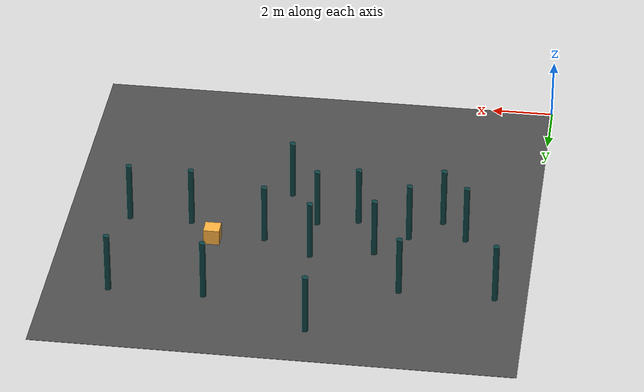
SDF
<sdf version="1.6">
 <world name="default">
  <model name="env_plane">
   <link name="link">
    <inertial>
     <mass>1</mass>
     <inertia><ixx>1</ixx><ixy>0</ixy><ixz>0</ixz><iyy>1</iyy><iyz>0</iyz><izz>1</izz></inertia>
    </inertial>
    <visual name="visual">
     <cast_shadows>0</cast_shadows>
     <geometry><box><size>15 15 0.01</size></box></geometry>
     <material>
      <script>
       <uri>model://asphalt_plane/materials/scripts</uri>
       <uri>model://asphalt_plane/materials/textures</uri>
       <name>vrc/asphalt</name>
      </script>
      <shader type="pixel"><normal_map>__default__</normal_map></shader>
      <diffuse>0.7 0.7 0.7 1</diffuse>
      <ambient>0.5 0.5 0.5 1</ambient>
      <specular>0.5 0.5 0.5 1</specular>
      <emissive>0.7 0.7 0.7 1</emissive>
     </material>
    </visual>
    <collision name="collision">
     <geometry><box><size>20 20 0.1</size></box></geometry>
     <surface>
      <friction>
       <ode><mu>1</mu><mu2>1</mu2><fdir1>0 0 0</fdir1><slip1>0</slip1><slip2>0</slip2></ode>
       <torsional>
        <coefficient>1</coefficient>
        <patch_radius>0</patch_radius>
        <surface_radius>0</surface_radius>
        <use_patch_radius>1</use_patch_radius>
        <ode><slip>0</slip></ode>
       </torsional>
      </friction>
      <bounce><restitution_coefficient>0</restitution_coefficient><threshold>1e+06</threshold></bounce>
      <contact>
       <collide_without_contact>0</collide_without_contact>
       <collide_without_contact_bitmask>1</collide_without_contact_bitmask>
       <collide_bitmask>1</collide_bitmask>
       <ode>
        <soft_cfm>0</soft_cfm>
        <soft_erp>0.2</soft_erp>
        <kp>1e+13</kp>
        <kd>1</kd>
        <max_vel>0.01</max_vel>
        <min_depth>0</min_depth>
       </ode>
       <bullet>
        <split_impulse>1</split_impulse>
        <split_impulse_penetration_threshold>-0.01</split_impulse_penetration_threshold>
        <soft_cfm>0</soft_cfm>
        <soft_erp>0.2</soft_erp>
        <kp>1e+13</kp>
        <kd>1</kd>
       </bullet>
      </contact>
     </surface>
    </collision>
   </link>
   <static>1</static>
   <pose>7.5 7.5 0 0 -0 0</pose>
  </model>
  <model name="obstacle_clone_2">
   <link name="link">
    <inertial>
     <mass>112.569</mass>
     <inertia><ixx>33.2512</ixx><ixy>0</ixy><ixz>0</ixz><iyy>33.2512</iyy><iyz>0</iyz><izz>0.537779</izz></inertia>
    </inertial>
    <visual name="visual">
     <geometry><cylinder><radius>0.1</radius><length>2</length></cylinder></geometry>
     <material>
      <script><name>Gazebo/Grey</name><uri>file://media/materials/scripts/gazebo.material</uri></script>
      <shader type="pixel"><normal_map>__default__</normal_map></shader>
      <ambient>0.05 0.25 0.25 1</ambient>
      <diffuse>0.3 0.3 0.3 1</diffuse>
      <specular>0.01 0.01 0.01 1</specular>
      <emissive>0.1 0.1 0.1 1</emissive>
      <lighting>1</lighting>
     </material>
    </visual>
    <collision name="collision">
     <geometry><cylinder><radius>0.097748</radius><length>1.87509</length></cylinder></geometry>
     <surface>
      <friction>
       <ode><mu>1</mu><mu2>1</mu2><fdir1>0 0 0</fdir1><slip1>0</slip1><slip2>0</slip2></ode>
       <torsional>
        <coefficient>1</coefficient>
        <patch_radius>0</patch_radius>
        <surface_radius>0</surface_radius>
        <use_patch_radius>1</use_patch_radius>
        <ode><slip>0</slip></ode>
       </torsional>
      </friction>
      <bounce><restitution_coefficient>0</restitution_coefficient><threshold>1e+06</threshold></bounce>
      <contact>
       <collide_without_contact>0</collide_without_contact>
       <collide_without_contact_bitmask>1</collide_without_contact_bitmask>
       <collide_bitmask>1</collide_bitmask>
       <ode>
        <soft_cfm>0</soft_cfm>
        <soft_erp>0.2</soft_erp>
        <kp>1e+13</kp>
        <kd>1</kd>
        <max_vel>0.01</max_vel>
        <min_depth>0</min_depth>
       </ode>
       <bullet>
        <split_impulse>1</split_impulse>
        <split_impulse_penetration_threshold>-0.01</split_impulse_penetration_threshold>
        <soft_cfm>0</soft_cfm>
        <soft_erp>0.2</soft_erp>
        <kp>1e+13</kp>
        <kd>1</kd>
       </bullet>
      </contact>
     </surface>
    </collision>
   </link>
   <static>0</static>
   <pose>2.19392 7.89594 0.987542 -5.7e-05 2.8e-05 0.005702</pose>
  </model>
  <model name="obstacle_clone_3">
   <link name="link">
    <inertial>
     <mass>112.569</mass>
     <inertia><ixx>33.2512</ixx><ixy>0</ixy><ixz>0</ixz><iyy>33.2512</iyy><iyz>0</iyz><izz>0.537779</izz></inertia>
    </inertial>
    <visual name="visual">
     <geometry><cylinder><radius>0.1</radius><length>2</length></cylinder></geometry>
     <material>
      <script><name>Gazebo/Grey</name><uri>file://media/materials/scripts/gazebo.material</uri></script>
      <shader type="pixel"><normal_map>__default__</normal_map></shader>
      <ambient>0.05 0.25 0.25 1</ambient>
      <diffuse>0.3 0.3 0.3 1</diffuse>
      <specular>0.01 0.01 0.01 1</specular>
      <emissive>0.1 0.1 0.1 1</emissive>
      <lighting>1</lighting>
     </material>
    </visual>
    <collision name="collision">
     <geometry><cylinder><radius>0.097748</radius><length>1.87509</length></cylinder></geometry>
     <surface>
      <friction>
       <ode><mu>1</mu><mu2>1</mu2><fdir1>0 0 0</fdir1><slip1>0</slip1><slip2>0</slip2></ode>
       <torsional>
        <coefficient>1</coefficient>
        <patch_radius>0</patch_radius>
        <surface_radius>0</surface_radius>
        <use_patch_radius>1</use_patch_radius>
        <ode><slip>0</slip></ode>
       </torsional>
      </friction>
      <bounce><restitution_coefficient>0</restitution_coefficient><threshold>1e+06</threshold></bounce>
      <contact>
       <collide_without_contact>0</collide_without_contact>
       <collide_without_contact_bitmask>1</collide_without_contact_bitmask>
       <collide_bitmask>1</collide_bitmask>
       <ode>
        <soft_cfm>0</soft_cfm>
        <soft_erp>0.2</soft_erp>
        <kp>1e+13</kp>
        <kd>1</kd>
        <max_vel>0.01</max_vel>
        <min_depth>0</min_depth>
       </ode>
       <bullet>
        <split_impulse>1</split_impulse>
        <split_impulse_penetration_threshold>-0.01</split_impulse_penetration_threshold>
        <soft_cfm>0</soft_cfm>
        <soft_erp>0.2</soft_erp>
        <kp>1e+13</kp>
        <kd>1</kd>
       </bullet>
      </contact>
     </surface>
    </collision>
   </link>
   <static>0</static>
   <pose>1.00014 11.0001 0.987542 -5.8e-05 2.7e-05 0.00418</pose>
  </model>
  <model name="obstacle_clone_5">
   <link name="link">
    <inertial>
     <mass>112.569</mass>
     <inertia><ixx>33.2512</ixx><ixy>0</ixy><ixz>0</ixz><iyy>33.2512</iyy><iyz>0</iyz><izz>0.537779</izz></inertia>
    </inertial>
    <visual name="visual">
     <geometry><cylinder><radius>0.1</radius><length>2</length></cylinder></geometry>
     <material>
      <script><name>Gazebo/Grey</name><uri>file://media/materials/scripts/gazebo.material</uri></script>
      <shader type="pixel"><normal_map>__default__</normal_map></shader>
      <ambient>0.05 0.25 0.25 1</ambient>
      <diffuse>0.3 0.3 0.3 1</diffuse>
      <specular>0.01 0.01 0.01 1</specular>
      <emissive>0.1 0.1 0.1 1</emissive>
      <lighting>1</lighting>
     </material>
    </visual>
    <collision name="collision">
     <geometry><cylinder><radius>0.097748</radius><length>1.87509</length></cylinder></geometry>
     <surface>
      <friction>
       <ode><mu>1</mu><mu2>1</mu2><fdir1>0 0 0</fdir1><slip1>0</slip1><slip2>0</slip2></ode>
       <torsional>
        <coefficient>1</coefficient>
        <patch_radius>0</patch_radius>
        <surface_radius>0</surface_radius>
        <use_patch_radius>1</use_patch_radius>
        <ode><slip>0</slip></ode>
       </torsional>
      </friction>
      <bounce><restitution_coefficient>0</restitution_coefficient><threshold>1e+06</threshold></bounce>
      <contact>
       <collide_without_contact>0</collide_without_contact>
       <collide_without_contact_bitmask>1</collide_without_contact_bitmask>
       <collide_bitmask>1</collide_bitmask>
       <ode>
        <soft_cfm>0</soft_cfm>
        <soft_erp>0.2</soft_erp>
        <kp>1e+13</kp>
        <kd>1</kd>
        <max_vel>0.01</max_vel>
        <min_depth>0</min_depth>
       </ode>
       <bullet>
        <split_impulse>1</split_impulse>
        <split_impulse_penetration_threshold>-0.01</split_impulse_penetration_threshold>
        <soft_cfm>0</soft_cfm>
        <soft_erp>0.2</soft_erp>
        <kp>1e+13</kp>
        <kd>1</kd>
       </bullet>
      </contact>
     </surface>
    </collision>
   </link>
   <static>0</static>
   <pose>5.00035 9.00007 0.987551 -6.2e-05 2.7e-05 0.006645</pose>
  </model>
  <model name="obstacle_clone_6">
   <link name="link">
    <inertial>
     <mass>112.569</mass>
     <inertia><ixx>33.2512</ixx><ixy>0</ixy><ixz>0</ixz><iyy>33.2512</iyy><iyz>0</iyz><izz>0.537779</izz></inertia>
    </inertial>
    <visual name="visual">
     <geometry><cylinder><radius>0.1</radius><length>2</length></cylinder></geometry>
     <material>
      <script><name>Gazebo/Grey</name><uri>file://media/materials/scripts/gazebo.material</uri></script>
      <shader type="pixel"><normal_map>__default__</normal_map></shader>
      <ambient>0.05 0.25 0.25 1</ambient>
      <diffuse>0.3 0.3 0.3 1</diffuse>
      <specular>0.01 0.01 0.01 1</specular>
      <emissive>0.1 0.1 0.1 1</emissive>
      <lighting>1</lighting>
     </material>
    </visual>
    <collision name="collision">
     <geometry><cylinder><radius>0.097748</radius><length>1.87509</length></cylinder></geometry>
     <surface>
      <friction>
       <ode><mu>1</mu><mu2>1</mu2><fdir1>0 0 0</fdir1><slip1>0</slip1><slip2>0</slip2></ode>
       <torsional>
        <coefficient>1</coefficient>
        <patch_radius>0</patch_radius>
        <surface_radius>0</surface_radius>
        <use_patch_radius>1</use_patch_radius>
        <ode><slip>0</slip></ode>
       </torsional>
      </friction>
      <bounce><restitution_coefficient>0</restitution_coefficient><threshold>1e+06</threshold></bounce>
      <contact>
       <collide_without_contact>0</collide_without_contact>
       <collide_without_contact_bitmask>1</collide_without_contact_bitmask>
       <collide_bitmask>1</collide_bitmask>
       <ode>
        <soft_cfm>0</soft_cfm>
        <soft_erp>0.2</soft_erp>
        <kp>1e+13</kp>
        <kd>1</kd>
        <max_vel>0.01</max_vel>
        <min_depth>0</min_depth>
       </ode>
       <bullet>
        <split_impulse>1</split_impulse>
        <split_impulse_penetration_threshold>-0.01</split_impulse_penetration_threshold>
        <soft_cfm>0</soft_cfm>
        <soft_erp>0.2</soft_erp>
        <kp>1e+13</kp>
        <kd>1</kd>
       </bullet>
      </contact>
     </surface>
    </collision>
   </link>
   <static>0</static>
   <pose>4.00036 8.00005 0.987541 -5.6e-05 2.7e-05 0.006554</pose>
  </model>
  <model name="obstacle_clone_8">
   <link name="link">
    <inertial>
     <mass>112.569</mass>
     <inertia><ixx>33.2512</ixx><ixy>0</ixy><ixz>0</ixz><iyy>33.2512</iyy><iyz>0</iyz><izz>0.537779</izz></inertia>
    </inertial>
    <visual name="visual">
     <geometry><cylinder><radius>0.1</radius><length>2</length></cylinder></geometry>
     <material>
      <script><name>Gazebo/Grey</name><uri>file://media/materials/scripts/gazebo.material</uri></script>
      <shader type="pixel"><normal_map>__default__</normal_map></shader>
      <ambient>0.05 0.25 0.25 1</ambient>
      <diffuse>0.3 0.3 0.3 1</diffuse>
      <specular>0.01 0.01 0.01 1</specular>
      <emissive>0.1 0.1 0.1 1</emissive>
      <lighting>1</lighting>
     </material>
    </visual>
    <collision name="collision">
     <geometry><cylinder><radius>0.097748</radius><length>1.87509</length></cylinder></geometry>
     <surface>
      <friction>
       <ode><mu>1</mu><mu2>1</mu2><fdir1>0 0 0</fdir1><slip1>0</slip1><slip2>0</slip2></ode>
       <torsional>
        <coefficient>1</coefficient>
        <patch_radius>0</patch_radius>
        <surface_radius>0</surface_radius>
        <use_patch_radius>1</use_patch_radius>
        <ode><slip>0</slip></ode>
       </torsional>
      </friction>
      <bounce><restitution_coefficient>0</restitution_coefficient><threshold>1e+06</threshold></bounce>
      <contact>
       <collide_without_contact>0</collide_without_contact>
       <collide_without_contact_bitmask>1</collide_without_contact_bitmask>
       <collide_bitmask>1</collide_bitmask>
       <ode>
        <soft_cfm>0</soft_cfm>
        <soft_erp>0.2</soft_erp>
        <kp>1e+13</kp>
        <kd>1</kd>
        <max_vel>0.01</max_vel>
        <min_depth>0</min_depth>
       </ode>
       <bullet>
        <split_impulse>1</split_impulse>
        <split_impulse_penetration_threshold>-0.01</split_impulse_penetration_threshold>
        <soft_cfm>0</soft_cfm>
        <soft_erp>0.2</soft_erp>
        <kp>1e+13</kp>
        <kd>1</kd>
       </bullet>
      </contact>
     </surface>
    </collision>
   </link>
   <static>0</static>
   <pose>7.00036 9.40157 0.987551 -5.5e-05 2.6e-05 0.006663</pose>
  </model>
  <model name="obstacle_clone_9">
   <link name="link">
    <inertial>
     <mass>112.569</mass>
     <inertia><ixx>33.2512</ixx><ixy>0</ixy><ixz>0</ixz><iyy>33.2512</iyy><iyz>0</iyz><izz>0.537779</izz></inertia>
    </inertial>
    <visual name="visual">
     <geometry><cylinder><radius>0.1</radius><length>2</length></cylinder></geometry>
     <material>
      <script><name>Gazebo/Grey</name><uri>file://media/materials/scripts/gazebo.material</uri></script>
      <shader type="pixel"><normal_map>__default__</normal_map></shader>
      <ambient>0.05 0.25 0.25 1</ambient>
      <diffuse>0.3 0.3 0.3 1</diffuse>
      <specular>0.01 0.01 0.01 1</specular>
      <emissive>0.1 0.1 0.1 1</emissive>
      <lighting>1</lighting>
     </material>
    </visual>
    <collision name="collision">
     <geometry><cylinder><radius>0.097748</radius><length>1.87509</length></cylinder></geometry>
     <surface>
      <friction>
       <ode><mu>1</mu><mu2>1</mu2><fdir1>0 0 0</fdir1><slip1>0</slip1><slip2>0</slip2></ode>
       <torsional>
        <coefficient>1</coefficient>
        <patch_radius>0</patch_radius>
        <surface_radius>0</surface_radius>
        <use_patch_radius>1</use_patch_radius>
        <ode><slip>0</slip></ode>
       </torsional>
      </friction>
      <bounce><restitution_coefficient>0</restitution_coefficient><threshold>1e+06</threshold></bounce>
      <contact>
       <collide_without_contact>0</collide_without_contact>
       <collide_without_contact_bitmask>1</collide_without_contact_bitmask>
       <collide_bitmask>1</collide_bitmask>
       <ode>
        <soft_cfm>0</soft_cfm>
        <soft_erp>0.2</soft_erp>
        <kp>1e+13</kp>
        <kd>1</kd>
        <max_vel>0.01</max_vel>
        <min_depth>0</min_depth>
       </ode>
       <bullet>
        <split_impulse>1</split_impulse>
        <split_impulse_penetration_threshold>-0.01</split_impulse_penetration_threshold>
        <soft_cfm>0</soft_cfm>
        <soft_erp>0.2</soft_erp>
        <kp>1e+13</kp>
        <kd>1</kd>
       </bullet>
      </contact>
     </surface>
    </collision>
   </link>
   <static>0</static>
   <pose>5.69881 7.28333 0.987551 -5.5e-05 2.5e-05 0.006572</pose>
  </model>
  <model name="obstacle_clone_12">
   <link name="link">
    <inertial>
     <mass>112.569</mass>
     <inertia><ixx>33.2512</ixx><ixy>0</ixy><ixz>0</ixz><iyy>33.2512</iyy><iyz>0</iyz><izz>0.537779</izz></inertia>
    </inertial>
    <visual name="visual">
     <geometry><cylinder><radius>0.1</radius><length>2</length></cylinder></geometry>
     <material>
      <script><name>Gazebo/Grey</name><uri>file://media/materials/scripts/gazebo.material</uri></script>
      <shader type="pixel"><normal_map>__default__</normal_map></shader>
      <ambient>0.05 0.25 0.25 1</ambient>
      <diffuse>0.3 0.3 0.3 1</diffuse>
      <specular>0.01 0.01 0.01 1</specular>
      <emissive>0.1 0.1 0.1 1</emissive>
      <lighting>1</lighting>
     </material>
    </visual>
    <collision name="collision">
     <geometry><cylinder><radius>0.097748</radius><length>1.87509</length></cylinder></geometry>
     <surface>
      <friction>
       <ode><mu>1</mu><mu2>1</mu2><fdir1>0 0 0</fdir1><slip1>0</slip1><slip2>0</slip2></ode>
       <torsional>
        <coefficient>1</coefficient>
        <patch_radius>0</patch_radius>
        <surface_radius>0</surface_radius>
        <use_patch_radius>1</use_patch_radius>
        <ode><slip>0</slip></ode>
       </torsional>
      </friction>
      <bounce><restitution_coefficient>0</restitution_coefficient><threshold>1e+06</threshold></bounce>
      <contact>
       <collide_without_contact>0</collide_without_contact>
       <collide_without_contact_bitmask>1</collide_without_contact_bitmask>
       <collide_bitmask>1</collide_bitmask>
       <ode>
        <soft_cfm>0</soft_cfm>
        <soft_erp>0.2</soft_erp>
        <kp>1e+13</kp>
        <kd>1</kd>
        <max_vel>0.01</max_vel>
        <min_depth>0</min_depth>
       </ode>
       <bullet>
        <split_impulse>1</split_impulse>
        <split_impulse_penetration_threshold>-0.01</split_impulse_penetration_threshold>
        <soft_cfm>0</soft_cfm>
        <soft_erp>0.2</soft_erp>
        <kp>1e+13</kp>
        <kd>1</kd>
       </bullet>
      </contact>
     </surface>
    </collision>
   </link>
   <static>0</static>
   <pose>8.55034 8.6666 0.987551 -5.7e-05 2.6e-05 0.006613</pose>
  </model>
  <model name="obstacle_clone_16">
   <link name="link">
    <inertial>
     <mass>112.569</mass>
     <inertia><ixx>33.2512</ixx><ixy>0</ixy><ixz>0</ixz><iyy>33.2512</iyy><iyz>0</iyz><izz>0.537779</izz></inertia>
    </inertial>
    <visual name="visual">
     <geometry><cylinder><radius>0.1</radius><length>2</length></cylinder></geometry>
     <material>
      <script><name>Gazebo/Grey</name><uri>file://media/materials/scripts/gazebo.material</uri></script>
      <shader type="pixel"><normal_map>__default__</normal_map></shader>
      <ambient>0.05 0.25 0.25 1</ambient>
      <diffuse>0.3 0.3 0.3 1</diffuse>
      <specular>0.01 0.01 0.01 1</specular>
      <emissive>0.1 0.1 0.1 1</emissive>
      <lighting>1</lighting>
     </material>
    </visual>
    <collision name="collision">
     <geometry><cylinder><radius>0.097748</radius><length>1.87509</length></cylinder></geometry>
     <surface>
      <friction>
       <ode><mu>1</mu><mu2>1</mu2><fdir1>0 0 0</fdir1><slip1>0</slip1><slip2>0</slip2></ode>
       <torsional>
        <coefficient>1</coefficient>
        <patch_radius>0</patch_radius>
        <surface_radius>0</surface_radius>
        <use_patch_radius>1</use_patch_radius>
        <ode><slip>0</slip></ode>
       </torsional>
      </friction>
      <bounce><restitution_coefficient>0</restitution_coefficient><threshold>1e+06</threshold></bounce>
      <contact>
       <collide_without_contact>0</collide_without_contact>
       <collide_without_contact_bitmask>1</collide_without_contact_bitmask>
       <collide_bitmask>1</collide_bitmask>
       <ode>
        <soft_cfm>0</soft_cfm>
        <soft_erp>0.2</soft_erp>
        <kp>1e+13</kp>
        <kd>1</kd>
        <max_vel>0.01</max_vel>
        <min_depth>0</min_depth>
       </ode>
       <bullet>
        <split_impulse>1</split_impulse>
        <split_impulse_penetration_threshold>-0.01</split_impulse_penetration_threshold>
        <soft_cfm>0</soft_cfm>
        <soft_erp>0.2</soft_erp>
        <kp>1e+13</kp>
        <kd>1</kd>
       </bullet>
      </contact>
     </surface>
    </collision>
   </link>
   <static>0</static>
   <pose>4.00031 11 0.987551 -5.7e-05 2.5e-05 0.00621</pose>
  </model>
  <model name="obstacle_clone_17">
   <link name="link">
    <inertial>
     <mass>112.569</mass>
     <inertia><ixx>33.2512</ixx><ixy>0</ixy><ixz>0</ixz><iyy>33.2512</iyy><iyz>0</iyz><izz>0.537779</izz></inertia>
    </inertial>
    <visual name="visual">
     <geometry><cylinder><radius>0.1</radius><length>2</length></cylinder></geometry>
     <material>
      <script><name>Gazebo/Grey</name><uri>file://media/materials/scripts/gazebo.material</uri></script>
      <shader type="pixel"><normal_map>__default__</normal_map></shader>
      <ambient>0.05 0.25 0.25 1</ambient>
      <diffuse>0.3 0.3 0.3 1</diffuse>
      <specular>0.01 0.01 0.01 1</specular>
      <emissive>0.1 0.1 0.1 1</emissive>
      <lighting>1</lighting>
     </material>
    </visual>
    <collision name="collision">
     <geometry><cylinder><radius>0.097748</radius><length>1.87509</length></cylinder></geometry>
     <surface>
      <friction>
       <ode><mu>1</mu><mu2>1</mu2><fdir1>0 0 0</fdir1><slip1>0</slip1><slip2>0</slip2></ode>
       <torsional>
        <coefficient>1</coefficient>
        <patch_radius>0</patch_radius>
        <surface_radius>0</surface_radius>
        <use_patch_radius>1</use_patch_radius>
        <ode><slip>0</slip></ode>
       </torsional>
      </friction>
      <bounce><restitution_coefficient>0</restitution_coefficient><threshold>1e+06</threshold></bounce>
      <contact>
       <collide_without_contact>0</collide_without_contact>
       <collide_without_contact_bitmask>1</collide_without_contact_bitmask>
       <collide_bitmask>1</collide_bitmask>
       <ode>
        <soft_cfm>0</soft_cfm>
        <soft_erp>0.2</soft_erp>
        <kp>1e+13</kp>
        <kd>1</kd>
        <max_vel>0.01</max_vel>
        <min_depth>0</min_depth>
       </ode>
       <bullet>
        <split_impulse>1</split_impulse>
        <split_impulse_penetration_threshold>-0.01</split_impulse_penetration_threshold>
        <soft_cfm>0</soft_cfm>
        <soft_erp>0.2</soft_erp>
        <kp>1e+13</kp>
        <kd>1</kd>
       </bullet>
      </contact>
     </surface>
    </collision>
   </link>
   <static>0</static>
   <pose>7.00033 7.55539 0.987541 -5.9e-05 2.6e-05 0.006435</pose>
  </model>
  <model name="obstacle_clone_18">
   <link name="link">
    <inertial>
     <mass>112.569</mass>
     <inertia><ixx>33.2512</ixx><ixy>0</ixy><ixz>0</ixz><iyy>33.2512</iyy><iyz>0</iyz><izz>0.537779</izz></inertia>
    </inertial>
    <visual name="visual">
     <geometry><cylinder><radius>0.1</radius><length>2</length></cylinder></geometry>
     <material>
      <script><name>Gazebo/Grey</name><uri>file://media/materials/scripts/gazebo.material</uri></script>
      <shader type="pixel"><normal_map>__default__</normal_map></shader>
      <ambient>0.05 0.25 0.25 1</ambient>
      <diffuse>0.3 0.3 0.3 1</diffuse>
      <specular>0.01 0.01 0.01 1</specular>
      <emissive>0.1 0.1 0.1 1</emissive>
      <lighting>1</lighting>
     </material>
    </visual>
    <collision name="collision">
     <geometry><cylinder><radius>0.097748</radius><length>1.87509</length></cylinder></geometry>
     <surface>
      <friction>
       <ode><mu>1</mu><mu2>1</mu2><fdir1>0 0 0</fdir1><slip1>0</slip1><slip2>0</slip2></ode>
       <torsional>
        <coefficient>1</coefficient>
        <patch_radius>0</patch_radius>
        <surface_radius>0</surface_radius>
        <use_patch_radius>1</use_patch_radius>
        <ode><slip>0</slip></ode>
       </torsional>
      </friction>
      <bounce><restitution_coefficient>0</restitution_coefficient><threshold>1e+06</threshold></bounce>
      <contact>
       <collide_without_contact>0</collide_without_contact>
       <collide_without_contact_bitmask>1</collide_without_contact_bitmask>
       <collide_bitmask>1</collide_bitmask>
       <ode>
        <soft_cfm>0</soft_cfm>
        <soft_erp>0.2</soft_erp>
        <kp>1e+13</kp>
        <kd>1</kd>
        <max_vel>0.01</max_vel>
        <min_depth>0</min_depth>
       </ode>
       <bullet>
        <split_impulse>1</split_impulse>
        <split_impulse_penetration_threshold>-0.01</split_impulse_penetration_threshold>
        <soft_cfm>0</soft_cfm>
        <soft_erp>0.2</soft_erp>
        <kp>1e+13</kp>
        <kd>1</kd>
       </bullet>
      </contact>
     </surface>
    </collision>
   </link>
   <static>0</static>
   <pose>11.0003 8.00007 0.987542 -6.4e-05 2.8e-05 0.006536</pose>
  </model>
  <model name="obstacle_clone_19">
   <link name="link">
    <inertial>
     <mass>112.569</mass>
     <inertia><ixx>33.2512</ixx><ixy>0</ixy><ixz>0</ixz><iyy>33.2512</iyy><iyz>0</iyz><izz>0.537779</izz></inertia>
    </inertial>
    <visual name="visual">
     <geometry><cylinder><radius>0.1</radius><length>2</length></cylinder></geometry>
     <material>
      <script><name>Gazebo/Grey</name><uri>file://media/materials/scripts/gazebo.material</uri></script>
      <shader type="pixel"><normal_map>__default__</normal_map></shader>
      <ambient>0.05 0.25 0.25 1</ambient>
      <diffuse>0.3 0.3 0.3 1</diffuse>
      <specular>0.01 0.01 0.01 1</specular>
      <emissive>0.1 0.1 0.1 1</emissive>
      <lighting>1</lighting>
     </material>
    </visual>
    <collision name="collision">
     <geometry><cylinder><radius>0.097748</radius><length>1.87509</length></cylinder></geometry>
     <surface>
      <friction>
       <ode><mu>1</mu><mu2>1</mu2><fdir1>0 0 0</fdir1><slip1>0</slip1><slip2>0</slip2></ode>
       <torsional>
        <coefficient>1</coefficient>
        <patch_radius>0</patch_radius>
        <surface_radius>0</surface_radius>
        <use_patch_radius>1</use_patch_radius>
        <ode><slip>0</slip></ode>
       </torsional>
      </friction>
      <bounce><restitution_coefficient>0</restitution_coefficient><threshold>1e+06</threshold></bounce>
      <contact>
       <collide_without_contact>0</collide_without_contact>
       <collide_without_contact_bitmask>1</collide_without_contact_bitmask>
       <collide_bitmask>1</collide_bitmask>
       <ode>
        <soft_cfm>0</soft_cfm>
        <soft_erp>0.2</soft_erp>
        <kp>1e+13</kp>
        <kd>1</kd>
        <max_vel>0.01</max_vel>
        <min_depth>0</min_depth>
       </ode>
       <bullet>
        <split_impulse>1</split_impulse>
        <split_impulse_penetration_threshold>-0.01</split_impulse_penetration_threshold>
        <soft_cfm>0</soft_cfm>
        <soft_erp>0.2</soft_erp>
        <kp>1e+13</kp>
        <kd>1</kd>
       </bullet>
      </contact>
     </surface>
    </collision>
   </link>
   <static>0</static>
   <pose>10.0001 12 0.987545 -3.7e-05 1.4e-05 0.003677</pose>
  </model>
  <model name="obstacle_clone_20">
   <link name="link">
    <inertial>
     <mass>112.569</mass>
     <inertia><ixx>33.2512</ixx><ixy>0</ixy><ixz>0</ixz><iyy>33.2512</iyy><iyz>0</iyz><izz>0.537779</izz></inertia>
    </inertial>
    <visual name="visual">
     <geometry><cylinder><radius>0.1</radius><length>2</length></cylinder></geometry>
     <material>
      <script><name>Gazebo/Grey</name><uri>file://media/materials/scripts/gazebo.material</uri></script>
      <shader type="pixel"><normal_map>__default__</normal_map></shader>
      <ambient>0.05 0.25 0.25 1</ambient>
      <diffuse>0.3 0.3 0.3 1</diffuse>
      <specular>0.01 0.01 0.01 1</specular>
      <emissive>0.1 0.1 0.1 1</emissive>
      <lighting>1</lighting>
     </material>
    </visual>
    <collision name="collision">
     <geometry><cylinder><radius>0.097748</radius><length>1.87509</length></cylinder></geometry>
     <surface>
      <friction>
       <ode><mu>1</mu><mu2>1</mu2><fdir1>0 0 0</fdir1><slip1>0</slip1><slip2>0</slip2></ode>
       <torsional>
        <coefficient>1</coefficient>
        <patch_radius>0</patch_radius>
        <surface_radius>0</surface_radius>
        <use_patch_radius>1</use_patch_radius>
        <ode><slip>0</slip></ode>
       </torsional>
      </friction>
      <bounce><restitution_coefficient>0</restitution_coefficient><threshold>1e+06</threshold></bounce>
      <contact>
       <collide_without_contact>0</collide_without_contact>
       <collide_without_contact_bitmask>1</collide_without_contact_bitmask>
       <collide_bitmask>1</collide_bitmask>
       <ode>
        <soft_cfm>0</soft_cfm>
        <soft_erp>0.2</soft_erp>
        <kp>1e+13</kp>
        <kd>1</kd>
        <max_vel>0.01</max_vel>
        <min_depth>0</min_depth>
       </ode>
       <bullet>
        <split_impulse>1</split_impulse>
        <split_impulse_penetration_threshold>-0.01</split_impulse_penetration_threshold>
        <soft_cfm>0</soft_cfm>
        <soft_erp>0.2</soft_erp>
        <kp>1e+13</kp>
        <kd>1</kd>
       </bullet>
      </contact>
     </surface>
    </collision>
   </link>
   <static>0</static>
   <pose>13.0001 12 0.987545 -1.7e-05 4e-05 0.003581</pose>
  </model>
  <model name="obstacle_clone_22">
   <link name="link">
    <inertial>
     <mass>112.569</mass>
     <inertia><ixx>33.2512</ixx><ixy>0</ixy><ixz>0</ixz><iyy>33.2512</iyy><iyz>0</iyz><izz>0.537779</izz></inertia>
    </inertial>
    <visual name="visual">
     <geometry><cylinder><radius>0.1</radius><length>2</length></cylinder></geometry>
     <material>
      <script><name>Gazebo/Grey</name><uri>file://media/materials/scripts/gazebo.material</uri></script>
      <shader type="pixel"><normal_map>__default__</normal_map></shader>
      <ambient>0.05 0.25 0.25 1</ambient>
      <diffuse>0.3 0.3 0.3 1</diffuse>
      <specular>0.01 0.01 0.01 1</specular>
      <emissive>0.1 0.1 0.1 1</emissive>
      <lighting>1</lighting>
     </material>
    </visual>
    <collision name="collision">
     <geometry><cylinder><radius>0.097748</radius><length>1.87509</length></cylinder></geometry>
     <surface>
      <friction>
       <ode><mu>1</mu><mu2>1</mu2><fdir1>0 0 0</fdir1><slip1>0</slip1><slip2>0</slip2></ode>
       <torsional>
        <coefficient>1</coefficient>
        <patch_radius>0</patch_radius>
        <surface_radius>0</surface_radius>
        <use_patch_radius>1</use_patch_radius>
        <ode><slip>0</slip></ode>
       </torsional>
      </friction>
      <bounce><restitution_coefficient>0</restitution_coefficient><threshold>1e+06</threshold></bounce>
      <contact>
       <collide_without_contact>0</collide_without_contact>
       <collide_without_contact_bitmask>1</collide_without_contact_bitmask>
       <collide_bitmask>1</collide_bitmask>
       <ode>
        <soft_cfm>0</soft_cfm>
        <soft_erp>0.2</soft_erp>
        <kp>1e+13</kp>
        <kd>1</kd>
        <max_vel>0.01</max_vel>
        <min_depth>0</min_depth>
       </ode>
       <bullet>
        <split_impulse>1</split_impulse>
        <split_impulse_penetration_threshold>-0.01</split_impulse_penetration_threshold>
        <soft_cfm>0</soft_cfm>
        <soft_erp>0.2</soft_erp>
        <kp>1e+13</kp>
        <kd>1</kd>
       </bullet>
      </contact>
     </surface>
    </collision>
   </link>
   <static>0</static>
   <pose>8.00032 6.00007 0.987542 -6.3e-05 2.8e-05 0.006255</pose>
  </model>
  <model name="obstacle_clone_27">
   <link name="link">
    <inertial>
     <mass>112.569</mass>
     <inertia><ixx>33.2512</ixx><ixy>0</ixy><ixz>0</ixz><iyy>33.2512</iyy><iyz>0</iyz><izz>0.537779</izz></inertia>
    </inertial>
    <visual name="visual">
     <geometry><cylinder><radius>0.1</radius><length>2</length></cylinder></geometry>
     <material>
      <script><name>Gazebo/Grey</name><uri>file://media/materials/scripts/gazebo.material</uri></script>
      <shader type="pixel"><normal_map>__default__</normal_map></shader>
      <ambient>0.05 0.25 0.25 1</ambient>
      <diffuse>0.3 0.3 0.3 1</diffuse>
      <specular>0.01 0.01 0.01 1</specular>
      <emissive>0.1 0.1 0.1 1</emissive>
      <lighting>1</lighting>
     </material>
    </visual>
    <collision name="collision">
     <geometry><cylinder><radius>0.097748</radius><length>1.87509</length></cylinder></geometry>
     <surface>
      <friction>
       <ode><mu>1</mu><mu2>1</mu2><fdir1>0 0 0</fdir1><slip1>0</slip1><slip2>0</slip2></ode>
       <torsional>
        <coefficient>1</coefficient>
        <patch_radius>0</patch_radius>
        <surface_radius>0</surface_radius>
        <use_patch_radius>1</use_patch_radius>
        <ode><slip>0</slip></ode>
       </torsional>
      </friction>
      <bounce><restitution_coefficient>0</restitution_coefficient><threshold>1e+06</threshold></bounce>
      <contact>
       <collide_without_contact>0</collide_without_contact>
       <collide_without_contact_bitmask>1</collide_without_contact_bitmask>
       <collide_bitmask>1</collide_bitmask>
       <ode>
        <soft_cfm>0</soft_cfm>
        <soft_erp>0.2</soft_erp>
        <kp>1e+13</kp>
        <kd>1</kd>
        <max_vel>0.01</max_vel>
        <min_depth>0</min_depth>
       </ode>
       <bullet>
        <split_impulse>1</split_impulse>
        <split_impulse_penetration_threshold>-0.01</split_impulse_penetration_threshold>
        <soft_cfm>0</soft_cfm>
        <soft_erp>0.2</soft_erp>
        <kp>1e+13</kp>
        <kd>1</kd>
       </bullet>
      </contact>
     </surface>
    </collision>
   </link>
   <static>0</static>
   <pose>13.0003 8.00008 0.987542 -5.8e-05 2.3e-05 0.005984</pose>
  </model>
  <model name="obstacle_clone_28">
   <link name="link">
    <inertial>
     <mass>112.569</mass>
     <inertia><ixx>33.2512</ixx><ixy>0</ixy><ixz>0</ixz><iyy>33.2512</iyy><iyz>0</iyz><izz>0.537779</izz></inertia>
    </inertial>
    <visual name="visual">
     <geometry><cylinder><radius>0.1</radius><length>2</length></cylinder></geometry>
     <material>
      <script><name>Gazebo/Grey</name><uri>file://media/materials/scripts/gazebo.material</uri></script>
      <shader type="pixel"><normal_map>__default__</normal_map></shader>
      <ambient>0.05 0.25 0.25 1</ambient>
      <diffuse>0.3 0.3 0.3 1</diffuse>
      <specular>0.01 0.01 0.01 1</specular>
      <emissive>0.1 0.1 0.1 1</emissive>
      <lighting>1</lighting>
     </material>
    </visual>
    <collision name="collision">
     <geometry><cylinder><radius>0.097748</radius><length>1.87509</length></cylinder></geometry>
     <surface>
      <friction>
       <ode><mu>1</mu><mu2>1</mu2><fdir1>0 0 0</fdir1><slip1>0</slip1><slip2>0</slip2></ode>
       <torsional>
        <coefficient>1</coefficient>
        <patch_radius>0</patch_radius>
        <surface_radius>0</surface_radius>
        <use_patch_radius>1</use_patch_radius>
        <ode><slip>0</slip></ode>
       </torsional>
      </friction>
      <bounce><restitution_coefficient>0</restitution_coefficient><threshold>1e+06</threshold></bounce>
      <contact>
       <collide_without_contact>0</collide_without_contact>
       <collide_without_contact_bitmask>1</collide_without_contact_bitmask>
       <collide_bitmask>1</collide_bitmask>
       <ode>
        <soft_cfm>0</soft_cfm>
        <soft_erp>0.2</soft_erp>
        <kp>1e+13</kp>
        <kd>1</kd>
        <max_vel>0.01</max_vel>
        <min_depth>0</min_depth>
       </ode>
       <bullet>
        <split_impulse>1</split_impulse>
        <split_impulse_penetration_threshold>-0.01</split_impulse_penetration_threshold>
        <soft_cfm>0</soft_cfm>
        <soft_erp>0.2</soft_erp>
        <kp>1e+13</kp>
        <kd>1</kd>
       </bullet>
      </contact>
     </surface>
    </collision>
   </link>
   <static>0</static>
   <pose>6.621 13.408 0.987545 -4.4e-05 2.8e-05 0.003765</pose>
  </model>
  <model name="obstacle_clone_30">
   <link name="link">
    <inertial>
     <mass>112.569</mass>
     <inertia><ixx>33.2512</ixx><ixy>0</ixy><ixz>0</ixz><iyy>33.2512</iyy><iyz>0</iyz><izz>0.537779</izz></inertia>
    </inertial>
    <visual name="visual">
     <geometry><cylinder><radius>0.1</radius><length>2</length></cylinder></geometry>
     <material>
      <script><name>Gazebo/Grey</name><uri>file://media/materials/scripts/gazebo.material</uri></script>
      <shader type="pixel"><normal_map>__default__</normal_map></shader>
      <ambient>0.05 0.25 0.25 1</ambient>
      <diffuse>0.3 0.3 0.3 1</diffuse>
      <specular>0.01 0.01 0.01 1</specular>
      <emissive>0.1 0.1 0.1 1</emissive>
      <lighting>1</lighting>
     </material>
    </visual>
    <collision name="collision">
     <geometry><cylinder><radius>0.097748</radius><length>1.87509</length></cylinder></geometry>
     <surface>
      <friction>
       <ode><mu>1</mu><mu2>1</mu2><fdir1>0 0 0</fdir1><slip1>0</slip1><slip2>0</slip2></ode>
       <torsional>
        <coefficient>1</coefficient>
        <patch_radius>0</patch_radius>
        <surface_radius>0</surface_radius>
        <use_patch_radius>1</use_patch_radius>
        <ode><slip>0</slip></ode>
       </torsional>
      </friction>
      <bounce><restitution_coefficient>0</restitution_coefficient><threshold>1e+06</threshold></bounce>
      <contact>
       <collide_without_contact>0</collide_without_contact>
       <collide_without_contact_bitmask>1</collide_without_contact_bitmask>
       <collide_bitmask>1</collide_bitmask>
       <ode>
        <soft_cfm>0</soft_cfm>
        <soft_erp>0.2</soft_erp>
        <kp>1e+13</kp>
        <kd>1</kd>
        <max_vel>0.01</max_vel>
        <min_depth>0</min_depth>
       </ode>
       <bullet>
        <split_impulse>1</split_impulse>
        <split_impulse_penetration_threshold>-0.01</split_impulse_penetration_threshold>
        <soft_cfm>0</soft_cfm>
        <soft_erp>0.2</soft_erp>
        <kp>1e+13</kp>
        <kd>1</kd>
       </bullet>
      </contact>
     </surface>
    </collision>
   </link>
   <static>0</static>
   <pose>3.00027 7.00007 0.987542 -5.7e-05 2.8e-05 0.005647</pose>
  </model>
  <model name="destination">
   <link name="link">
    <inertial>
     <mass>0.0182097</mass>
     <inertia>
      <ixx>2.41e-05</ixx>
      <ixy>0</ixy>
      <ixz>0</ixz>
      <iyy>1.97e-05</iyy>
      <iyz>0</iyz>
      <izz>2.207e-05</izz>
     </inertia>
    </inertial>
    <gravity>0</gravity>
    <visual name="visual">
     <geometry><box><size>0.5 0.5 0.5</size></box></geometry>
     <material>
      <script><name>Gazebo/Grey</name><uri>file://media/materials/scripts/gazebo.material</uri></script>
      <shader type="pixel"><normal_map>__default__</normal_map></shader>
      <ambient>0.988 0.686 0.243 1</ambient>
      <diffuse>0.988 0.686 0.243 1</diffuse>
      <specular>0.988 0.686 0.243 1</specular>
      <emissive>0.988 0.686 0.243 1</emissive>
     </material>
    </visual>
    <collision name="collision">
     <geometry><box><size>0.5 0.5 0.5</size></box></geometry>
     <surface>
      <friction>
       <ode><mu>1</mu><mu2>1</mu2><fdir1>0 0 0</fdir1><slip1>0</slip1><slip2>0</slip2></ode>
       <torsional>
        <coefficient>1</coefficient>
        <patch_radius>0</patch_radius>
        <surface_radius>0</surface_radius>
        <use_patch_radius>1</use_patch_radius>
        <ode><slip>0</slip></ode>
       </torsional>
      </friction>
      <bounce><restitution_coefficient>0</restitution_coefficient><threshold>1e+06</threshold></bounce>
      <contact>
       <collide_without_contact>1</collide_without_contact>
       <collide_without_contact_bitmask>1</collide_without_contact_bitmask>
       <collide_bitmask>1</collide_bitmask>
       <ode>
        <soft_cfm>0</soft_cfm>
        <soft_erp>0.2</soft_erp>
        <kp>1e+13</kp>
        <kd>1</kd>
        <max_vel>0.01</max_vel>
        <min_depth>0</min_depth>
       </ode>
       <bullet>
        <split_impulse>1</split_impulse>
        <split_impulse_penetration_threshold>-0.01</split_impulse_penetration_threshold>
        <soft_cfm>0</soft_cfm>
        <soft_erp>0.2</soft_erp>
        <kp>1e+13</kp>
        <kd>1</kd>
       </bullet>
      </contact>
     </surface>
    </collision>
   </link>
   <static>0</static>
   <pose>10 10 1 0 -0 0</pose>
  </model>
 </world>
</sdf>
